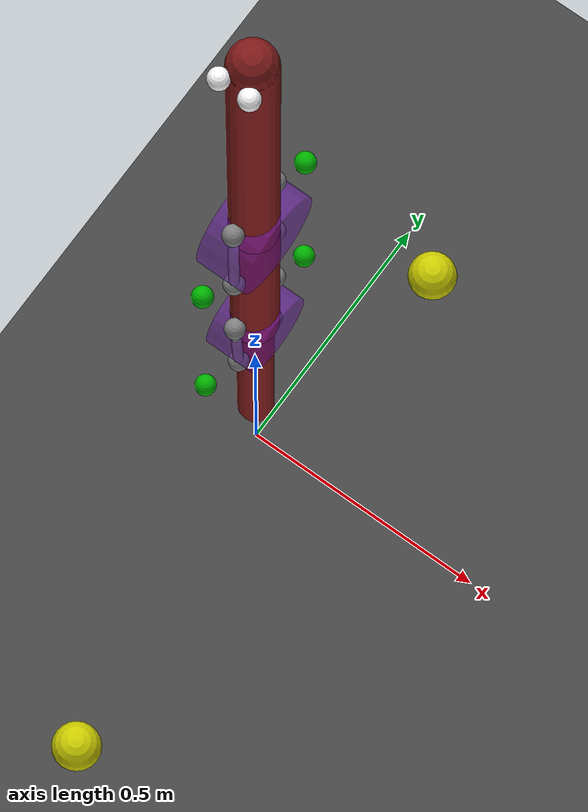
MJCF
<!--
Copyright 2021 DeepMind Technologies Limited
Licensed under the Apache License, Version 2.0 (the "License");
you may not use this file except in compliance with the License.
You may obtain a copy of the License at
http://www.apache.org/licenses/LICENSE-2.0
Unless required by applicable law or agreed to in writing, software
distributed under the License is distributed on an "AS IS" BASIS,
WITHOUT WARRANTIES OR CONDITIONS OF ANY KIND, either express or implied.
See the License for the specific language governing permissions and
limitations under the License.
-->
<mujoco model="2-link 6-muscle arm">
	<compiler inertiafromgeom="true"/>
    <option timestep="0.005" integrator="RK4" gravity="0 0 -9.81"/>

    <size njmax="100" nconmax="50" nstack="1000" nuserdata="200" nuser_actuator="4"/>

    <visual>
        <rgba haze=".1 .1 .1 1"/>
    </visual>

    <default>
        <muscle ctrllimited="true" ctrlrange="0 1" scale="0"/>
	<joint damping="0.0" armature="1" type="hinge" axis="1 0 0"/>
	<geom  friction="0.9" conaffinity="1" condim="1" contype="1" margin="0.001"  solimp=".8 .8 .01" solref=".02 1"/>
	<general dyntype="muscle" gaintype="muscle" biastype="muscle" dynprm="0.01 0.04"
    gainprm="0.75 1.05 -1 6000 0.5 1.6 0.5 1.3 1.2" biasprm="0.75 1.05 -1 6000 0.5 1.6 0.5 1.3 1.2" ctrlrange="0 1" ctrllimited="true"/>
    </default>

    <asset>
        <texture type="skybox" builtin="gradient" rgb1="0.6 0.6 0.6" rgb2="0 0 0" width="512" height="512"/>

        <texture name="texplane" type="2d" builtin="checker" rgb1=".25 .25 .25" rgb2=".3 .3 .3" width="512" height="512" mark="cross" markrgb=".8 .8 .8"/>

        <material name="matplane" reflectance="0.3" texture="texplane" texrepeat="1 1" texuniform="true"/>
    </asset>

    <worldbody>
    <geom name="floor" pos="0 0 -0.5" size="0 0 1" type="plane" material="matplane" conaffinity="1" condim="3" />
      <light mode="trackcom" directional="true" diffuse=".8 .8 .8" specular="0.3 0.3 0.3" pos="0 0 4.0" dir="0 0 -1"></light>

	<site name="limit1" pos="0.0 0.6 -0.5" size="0.05" rgba="0.8 0.8 0.0 1"/>
	<site name="limit2" pos="0.0 -0.6 -0.5" size="0.05" rgba="0.8 0.8 0.0 1"/>
	<body name="pelvis" pos="0 0 2.0">
	 	    <site name="eye1" pos="-0.03 -0.05 0.00" size="0.02" rgba="1 1 1 1"/>
	    <site name="eye2" pos="0.03 -0.05 0.00" size="0.02" rgba="1 1 1 1"/>
	    <geom name="torso" type="capsule" size="0.045" fromto="0 0 0  0 0 -0.8" rgba=".5 .1 .1 1"/>
	    <joint name="torso_z" type="slide" axis="0 0 1" armature="1" damping="1.0" stiffness="0"/>
	    <joint name="torso_y" type="slide" axis="0 1 0" armature="1" damping="1.0" stiffness="0"/>
        <joint name="torso_tilt" type="hinge" axis="1 0 0" armature="1" damping="1.0" stiffness="0" limited="false"/>
		<site name="bifemlh_r-P1" pos="0.0 0.00 0.00" size="0.02"/>
		<site name="s3" pos="0.0 0.06 -0.69" size="0.02"/>
		<site name="s4" pos="0.0 -0.06 -0.69" size="0.02"/>
		<site name="x2" pos="0.0 -0.15 -0.8" size="0.02" rgba="0 .7 0 1" group="1"/>
		<site name="x3" pos="0.0 0.15 -0.8" size="0.02" rgba="0 .7 0 1" group="1"/>

		<body name="upperleg" pos="0 0 -0.8">
            <joint name="hip" limited="true" range="-120 120"/>
            <geom name="hip" zaxis="1 0 0" type="cylinder" pos="0 0 0.0" size=".1 .05" rgba=".5 .1 .8 .5" mass="0" group="1"/>
		    <geom name="upperleg" type="capsule" size="0.045" fromto="0 0 0  0 0 -0.5" rgba=".5 .1 .1 1"/>
                     <site name="s5" pos="0.0 0.06 -0.15" size="0.02"/>
                     <site name="s6" pos="0.0 -0.06 -0.15" size="0.02"/>
                     <site name="s7" pos="0.0 0.06 -0.4" size="0.02"/>
                     <site name="s8" pos="0.0 -0.06 -0.4" size="0.02"/>
                     <site name="x4" pos="0.0 -0.15 -0.5" size="0.02" rgba="0 .7 0 1" group="1"/>
                     <site name="x5" pos="0.0 0.15 -0.5" size="0.02" rgba="0 .7 0 1" group="1"/>
		    <body name="lowerleg" pos="0 0 -0.5">
                <joint name="knee" range="-10 120" limited="true"/>
                <geom name="knee" zaxis="1 0 0 " type="cylinder" pos="0 0 0" size=".08 .05" rgba=".5 .1 .8 .5" mass="0" group="1"/>
                <geom name="lowerleg" type="capsule" size="0.035" fromto="0 0 0  0.0 0 -0.5" rgba=".5 .1 .1 1"/>
		<site name="s9" pos="0.0 0.05 -0.11" size="0.02"/>
		<site name="s10" pos="0.0 -0.05 -0.11" size="0.02"/>

                </body>
		</body>
	</body>
</worldbody>

<tendon>
        <spatial name="SF" width="0.01">
            <site site="s3"/>
            <geom geom="hip" sidesite="x3"/>
            <site site="s5"/>
        </spatial>

        <spatial name="SE" width="0.01">
            <site site="s4"/>
            <geom geom="hip" sidesite="x2"/>
            <site site="s6"/>
        </spatial>

         <spatial name="EF" width="0.01">
             <site site="s7"/>
             <geom geom="knee" sidesite="x5"/>
             <site site="s9"/>
         </spatial>

         <spatial name="EE" width="0.01">
             <site site="s8"/>
             <geom geom="knee" sidesite="x4"/>
             <site site="s10"/>
         </spatial>
 </tendon>

<actuator>
	<general name="SF" tendon="SF"  lengthrange="0.10248 0.340378"/>
	<general name="SE" tendon="SE" lengthrange="0.340334 0.54"/>
	<general name="EF" tendon="EF" lengthrange="0.0102 0.2164"/>
	<general name="EE" tendon="EE" lengthrange="0.216 0.384"/>
</actuator>
</mujoco>
